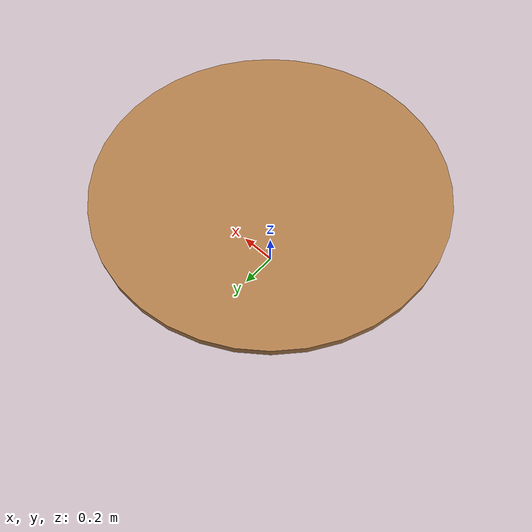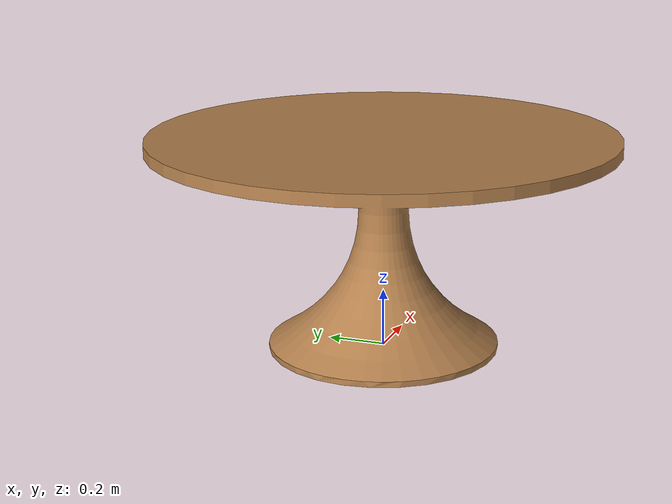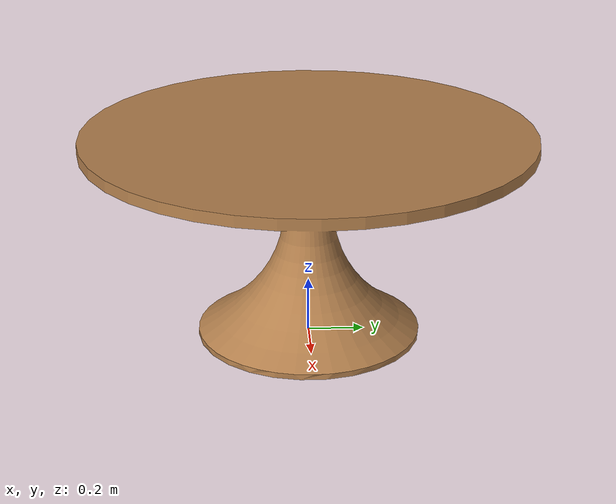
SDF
<sdf version='1.7'>
  <model name='Officedesk_R'>
    <link name='Officedesk_R'>
      <inertial>
        <pose>0 0 0.45582 0 -0 0</pose>
        <mass>155.91</mass>
        <inertia>
          <ixx>29.354</ixx>
          <ixy>-1.1148e-20</ixy>
          <ixz>1.5834e-14</ixz>
          <iyy>29.354</iyy>
          <iyz>-4.1147e-05</iyz>
          <izz>28.877</izz>
        </inertia>
      </inertial>
      <collision name='Officedesk_R_collision'>
        <pose>0 0 0 0 -0 0</pose>
        <geometry>
          <mesh>
            <scale>1 1 1</scale>
            <uri>model://Officedesk_R/meshes/Officedesk_R.STL</uri>
          </mesh>
        </geometry>
      </collision>
      <visual name='Officedesk_R_visual'>
        <pose>0 0 0 0 -0 0</pose>
        <geometry>
          <mesh>
            <scale>1 1 1</scale>
            <uri>model://Officedesk_R/meshes/Officedesk_R.STL</uri>
          </mesh>
        </geometry>
        <material>
          <script>
            <uri>file://media/materials/scripts/gazebo.material</uri>
            <name>Gazebo/Wood</name>
          </script>
        </material>
      </visual>
    </link>
  </model>
</sdf>
